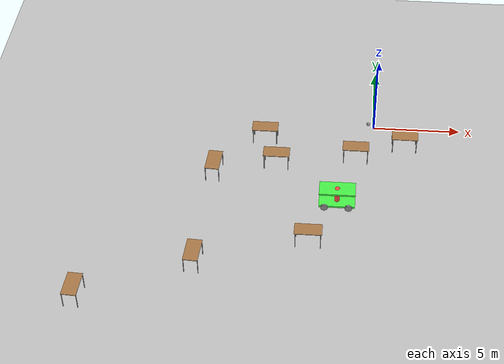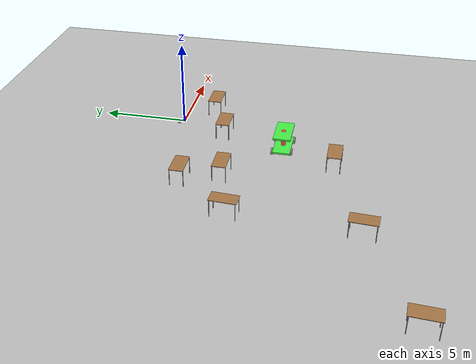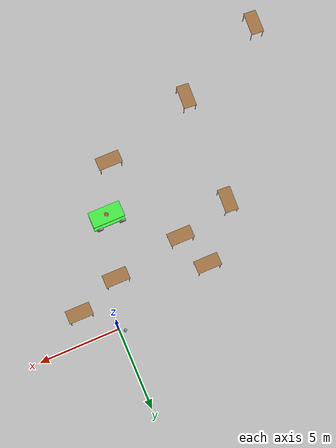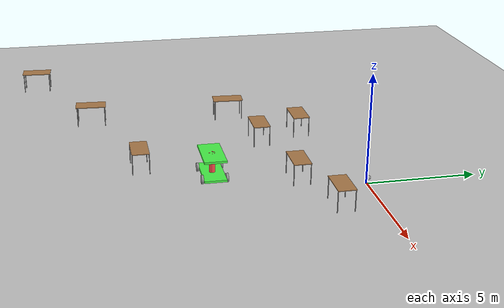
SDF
<sdf version="1.6">
 <world name="default">
  <model name="ground_plane">
   <static>1</static>
   <link name="link">
    <collision name="collision">
     <geometry><plane><normal>0 0 1</normal><size>100 100</size></plane></geometry>
     <surface>
      <contact><collide_bitmask>65535</collide_bitmask></contact>
      <friction><ode><mu>100</mu><mu2>50</mu2></ode></friction>
     </surface>
    </collision>
    <visual name="visual">
     <cast_shadows>0</cast_shadows>
     <geometry><plane><normal>0 0 1</normal><size>100 100</size></plane></geometry>
     <material>
      <script><uri>file://media/materials/scripts/gazebo.material</uri><name>Gazebo/Grey</name></script>
     </material>
    </visual>
   </link>
  </model>
  <model name="table">
   <static>1</static>
   <link name="link">
    <collision name="surface">
     <pose>0 0 1 0 -0 0</pose>
     <geometry><box><size>1.5 0.8 0.03</size></box></geometry>
     <surface><friction><ode><mu>0.6</mu><mu2>0.6</mu2></ode></friction></surface>
    </collision>
    <visual name="visual1">
     <pose>0 0 1 0 -0 0</pose>
     <geometry><box><size>1.5 0.8 0.03</size></box></geometry>
     <material>
      <script><uri>file://media/materials/scripts/gazebo.material</uri><name>Gazebo/Wood</name></script>
     </material>
    </visual>
    <collision name="front_left_leg">
     <pose>0.68 0.38 0.5 0 -0 0</pose>
     <geometry><cylinder><radius>0.02</radius><length>1</length></cylinder></geometry>
    </collision>
    <visual name="front_left_leg">
     <pose>0.68 0.38 0.5 0 -0 0</pose>
     <geometry><cylinder><radius>0.02</radius><length>1</length></cylinder></geometry>
     <material>
      <script><uri>file://media/materials/scripts/gazebo.material</uri><name>Gazebo/Grey</name></script>
     </material>
    </visual>
    <collision name="front_right_leg">
     <pose>0.68 -0.38 0.5 0 -0 0</pose>
     <geometry><cylinder><radius>0.02</radius><length>1</length></cylinder></geometry>
    </collision>
    <visual name="front_right_leg">
     <pose>0.68 -0.38 0.5 0 -0 0</pose>
     <geometry><cylinder><radius>0.02</radius><length>1</length></cylinder></geometry>
     <material>
      <script><uri>file://media/materials/scripts/gazebo.material</uri><name>Gazebo/Grey</name></script>
     </material>
    </visual>
    <collision name="back_right_leg">
     <pose>-0.68 -0.38 0.5 0 -0 0</pose>
     <geometry><cylinder><radius>0.02</radius><length>1</length></cylinder></geometry>
    </collision>
    <visual name="back_right_leg">
     <pose>-0.68 -0.38 0.5 0 -0 0</pose>
     <geometry><cylinder><radius>0.02</radius><length>1</length></cylinder></geometry>
     <material>
      <script><uri>file://media/materials/scripts/gazebo.material</uri><name>Gazebo/Grey</name></script>
     </material>
    </visual>
    <collision name="back_left_leg">
     <pose>-0.68 0.38 0.5 0 -0 0</pose>
     <geometry><cylinder><radius>0.02</radius><length>1</length></cylinder></geometry>
    </collision>
    <visual name="back_left_leg">
     <pose>-0.68 0.38 0.5 0 -0 0</pose>
     <geometry><cylinder><radius>0.02</radius><length>1</length></cylinder></geometry>
     <material>
      <script><uri>file://media/materials/scripts/gazebo.material</uri><name>Gazebo/Grey</name></script>
     </material>
    </visual>
   </link>
   <pose>-5.5188 -3.58842 0 0 -0 0</pose>
  </model>
  <model name="table_clone">
   <static>1</static>
   <link name="link">
    <collision name="surface">
     <pose>0 0 1 0 -0 0</pose>
     <geometry><box><size>1.5 0.8 0.03</size></box></geometry>
     <surface><friction><ode><mu>0.6</mu><mu2>0.6</mu2></ode></friction></surface>
    </collision>
    <visual name="visual1">
     <pose>0 0 1 0 -0 0</pose>
     <geometry><box><size>1.5 0.8 0.03</size></box></geometry>
     <material>
      <script><uri>file://media/materials/scripts/gazebo.material</uri><name>Gazebo/Wood</name></script>
     </material>
    </visual>
    <collision name="front_left_leg">
     <pose>0.68 0.38 0.5 0 -0 0</pose>
     <geometry><cylinder><radius>0.02</radius><length>1</length></cylinder></geometry>
    </collision>
    <visual name="front_left_leg">
     <pose>0.68 0.38 0.5 0 -0 0</pose>
     <geometry><cylinder><radius>0.02</radius><length>1</length></cylinder></geometry>
     <material>
      <script><uri>file://media/materials/scripts/gazebo.material</uri><name>Gazebo/Grey</name></script>
     </material>
    </visual>
    <collision name="front_right_leg">
     <pose>0.68 -0.38 0.5 0 -0 0</pose>
     <geometry><cylinder><radius>0.02</radius><length>1</length></cylinder></geometry>
    </collision>
    <visual name="front_right_leg">
     <pose>0.68 -0.38 0.5 0 -0 0</pose>
     <geometry><cylinder><radius>0.02</radius><length>1</length></cylinder></geometry>
     <material>
      <script><uri>file://media/materials/scripts/gazebo.material</uri><name>Gazebo/Grey</name></script>
     </material>
    </visual>
    <collision name="back_right_leg">
     <pose>-0.68 -0.38 0.5 0 -0 0</pose>
     <geometry><cylinder><radius>0.02</radius><length>1</length></cylinder></geometry>
    </collision>
    <visual name="back_right_leg">
     <pose>-0.68 -0.38 0.5 0 -0 0</pose>
     <geometry><cylinder><radius>0.02</radius><length>1</length></cylinder></geometry>
     <material>
      <script><uri>file://media/materials/scripts/gazebo.material</uri><name>Gazebo/Grey</name></script>
     </material>
    </visual>
    <collision name="back_left_leg">
     <pose>-0.68 0.38 0.5 0 -0 0</pose>
     <geometry><cylinder><radius>0.02</radius><length>1</length></cylinder></geometry>
    </collision>
    <visual name="back_left_leg">
     <pose>-0.68 0.38 0.5 0 -0 0</pose>
     <geometry><cylinder><radius>0.02</radius><length>1</length></cylinder></geometry>
     <material>
      <script><uri>file://media/materials/scripts/gazebo.material</uri><name>Gazebo/Grey</name></script>
     </material>
    </visual>
   </link>
   <pose>-3.37257 -9.55007 0 0 -0 0</pose>
  </model>
  <model name="table_clone_4">
   <static>1</static>
   <link name="link">
    <collision name="surface">
     <pose>0 0 1 0 -0 0</pose>
     <geometry><box><size>1.5 0.8 0.03</size></box></geometry>
     <surface><friction><ode><mu>0.6</mu><mu2>0.6</mu2></ode></friction></surface>
    </collision>
    <visual name="visual1">
     <pose>0 0 1 0 -0 0</pose>
     <geometry><box><size>1.5 0.8 0.03</size></box></geometry>
     <material>
      <script><uri>file://media/materials/scripts/gazebo.material</uri><name>Gazebo/Wood</name></script>
     </material>
    </visual>
    <collision name="front_left_leg">
     <pose>0.68 0.38 0.5 0 -0 0</pose>
     <geometry><cylinder><radius>0.02</radius><length>1</length></cylinder></geometry>
    </collision>
    <visual name="front_left_leg">
     <pose>0.68 0.38 0.5 0 -0 0</pose>
     <geometry><cylinder><radius>0.02</radius><length>1</length></cylinder></geometry>
     <material>
      <script><uri>file://media/materials/scripts/gazebo.material</uri><name>Gazebo/Grey</name></script>
     </material>
    </visual>
    <collision name="front_right_leg">
     <pose>0.68 -0.38 0.5 0 -0 0</pose>
     <geometry><cylinder><radius>0.02</radius><length>1</length></cylinder></geometry>
    </collision>
    <visual name="front_right_leg">
     <pose>0.68 -0.38 0.5 0 -0 0</pose>
     <geometry><cylinder><radius>0.02</radius><length>1</length></cylinder></geometry>
     <material>
      <script><uri>file://media/materials/scripts/gazebo.material</uri><name>Gazebo/Grey</name></script>
     </material>
    </visual>
    <collision name="back_right_leg">
     <pose>-0.68 -0.38 0.5 0 -0 0</pose>
     <geometry><cylinder><radius>0.02</radius><length>1</length></cylinder></geometry>
    </collision>
    <visual name="back_right_leg">
     <pose>-0.68 -0.38 0.5 0 -0 0</pose>
     <geometry><cylinder><radius>0.02</radius><length>1</length></cylinder></geometry>
     <material>
      <script><uri>file://media/materials/scripts/gazebo.material</uri><name>Gazebo/Grey</name></script>
     </material>
    </visual>
    <collision name="back_left_leg">
     <pose>-0.68 0.38 0.5 0 -0 0</pose>
     <geometry><cylinder><radius>0.02</radius><length>1</length></cylinder></geometry>
    </collision>
    <visual name="back_left_leg">
     <pose>-0.68 0.38 0.5 0 -0 0</pose>
     <geometry><cylinder><radius>0.02</radius><length>1</length></cylinder></geometry>
     <material>
      <script><uri>file://media/materials/scripts/gazebo.material</uri><name>Gazebo/Grey</name></script>
     </material>
    </visual>
   </link>
   <pose>-6.33417 -1.44501 0 0 -0 0</pose>
  </model>
  <model name="table_clone_5">
   <static>1</static>
   <link name="link">
    <collision name="surface">
     <pose>0 0 1 0 -0 0</pose>
     <geometry><box><size>1.5 0.8 0.03</size></box></geometry>
     <surface><friction><ode><mu>0.6</mu><mu2>0.6</mu2></ode></friction></surface>
    </collision>
    <visual name="visual1">
     <pose>0 0 1 0 -0 0</pose>
     <geometry><box><size>1.5 0.8 0.03</size></box></geometry>
     <material>
      <script><uri>file://media/materials/scripts/gazebo.material</uri><name>Gazebo/Wood</name></script>
     </material>
    </visual>
    <collision name="front_left_leg">
     <pose>0.68 0.38 0.5 0 -0 0</pose>
     <geometry><cylinder><radius>0.02</radius><length>1</length></cylinder></geometry>
    </collision>
    <visual name="front_left_leg">
     <pose>0.68 0.38 0.5 0 -0 0</pose>
     <geometry><cylinder><radius>0.02</radius><length>1</length></cylinder></geometry>
     <material>
      <script><uri>file://media/materials/scripts/gazebo.material</uri><name>Gazebo/Grey</name></script>
     </material>
    </visual>
    <collision name="front_right_leg">
     <pose>0.68 -0.38 0.5 0 -0 0</pose>
     <geometry><cylinder><radius>0.02</radius><length>1</length></cylinder></geometry>
    </collision>
    <visual name="front_right_leg">
     <pose>0.68 -0.38 0.5 0 -0 0</pose>
     <geometry><cylinder><radius>0.02</radius><length>1</length></cylinder></geometry>
     <material>
      <script><uri>file://media/materials/scripts/gazebo.material</uri><name>Gazebo/Grey</name></script>
     </material>
    </visual>
    <collision name="back_right_leg">
     <pose>-0.68 -0.38 0.5 0 -0 0</pose>
     <geometry><cylinder><radius>0.02</radius><length>1</length></cylinder></geometry>
    </collision>
    <visual name="back_right_leg">
     <pose>-0.68 -0.38 0.5 0 -0 0</pose>
     <geometry><cylinder><radius>0.02</radius><length>1</length></cylinder></geometry>
     <material>
      <script><uri>file://media/materials/scripts/gazebo.material</uri><name>Gazebo/Grey</name></script>
     </material>
    </visual>
    <collision name="back_left_leg">
     <pose>-0.68 0.38 0.5 0 -0 0</pose>
     <geometry><cylinder><radius>0.02</radius><length>1</length></cylinder></geometry>
    </collision>
    <visual name="back_left_leg">
     <pose>-0.68 0.38 0.5 0 -0 0</pose>
     <geometry><cylinder><radius>0.02</radius><length>1</length></cylinder></geometry>
     <material>
      <script><uri>file://media/materials/scripts/gazebo.material</uri><name>Gazebo/Grey</name></script>
     </material>
    </visual>
   </link>
   <pose>-1.02913 -2.78989 0 0 -0 0</pose>
  </model>
  <model name="table_clone_6">
   <static>1</static>
   <link name="link">
    <collision name="surface">
     <pose>0 0 1 0 -0 0</pose>
     <geometry><box><size>1.5 0.8 0.03</size></box></geometry>
     <surface><friction><ode><mu>0.6</mu><mu2>0.6</mu2></ode></friction></surface>
    </collision>
    <visual name="visual1">
     <pose>0 0 1 0 -0 0</pose>
     <geometry><box><size>1.5 0.8 0.03</size></box></geometry>
     <material>
      <script><uri>file://media/materials/scripts/gazebo.material</uri><name>Gazebo/Wood</name></script>
     </material>
    </visual>
    <collision name="front_left_leg">
     <pose>0.68 0.38 0.5 0 -0 0</pose>
     <geometry><cylinder><radius>0.02</radius><length>1</length></cylinder></geometry>
    </collision>
    <visual name="front_left_leg">
     <pose>0.68 0.38 0.5 0 -0 0</pose>
     <geometry><cylinder><radius>0.02</radius><length>1</length></cylinder></geometry>
     <material>
      <script><uri>file://media/materials/scripts/gazebo.material</uri><name>Gazebo/Grey</name></script>
     </material>
    </visual>
    <collision name="front_right_leg">
     <pose>0.68 -0.38 0.5 0 -0 0</pose>
     <geometry><cylinder><radius>0.02</radius><length>1</length></cylinder></geometry>
    </collision>
    <visual name="front_right_leg">
     <pose>0.68 -0.38 0.5 0 -0 0</pose>
     <geometry><cylinder><radius>0.02</radius><length>1</length></cylinder></geometry>
     <material>
      <script><uri>file://media/materials/scripts/gazebo.material</uri><name>Gazebo/Grey</name></script>
     </material>
    </visual>
    <collision name="back_right_leg">
     <pose>-0.68 -0.38 0.5 0 -0 0</pose>
     <geometry><cylinder><radius>0.02</radius><length>1</length></cylinder></geometry>
    </collision>
    <visual name="back_right_leg">
     <pose>-0.68 -0.38 0.5 0 -0 0</pose>
     <geometry><cylinder><radius>0.02</radius><length>1</length></cylinder></geometry>
     <material>
      <script><uri>file://media/materials/scripts/gazebo.material</uri><name>Gazebo/Grey</name></script>
     </material>
    </visual>
    <collision name="back_left_leg">
     <pose>-0.68 0.38 0.5 0 -0 0</pose>
     <geometry><cylinder><radius>0.02</radius><length>1</length></cylinder></geometry>
    </collision>
    <visual name="back_left_leg">
     <pose>-0.68 0.38 0.5 0 -0 0</pose>
     <geometry><cylinder><radius>0.02</radius><length>1</length></cylinder></geometry>
     <material>
      <script><uri>file://media/materials/scripts/gazebo.material</uri><name>Gazebo/Grey</name></script>
     </material>
    </visual>
   </link>
   <pose>1.75969 -1.68148 0 0 -0 0</pose>
  </model>
  <model name="table_clone_9_clone_3">
   <static>1</static>
   <link name="link">
    <collision name="surface">
     <pose>0 0 1 0 -0 0</pose>
     <geometry><box><size>1.5 0.8 0.03</size></box></geometry>
     <surface><friction><ode><mu>0.6</mu><mu2>0.6</mu2></ode></friction></surface>
    </collision>
    <visual name="visual1">
     <pose>0 0 1 0 -0 0</pose>
     <geometry><box><size>1.5 0.8 0.03</size></box></geometry>
     <material>
      <script><uri>file://media/materials/scripts/gazebo.material</uri><name>Gazebo/Wood</name></script>
     </material>
    </visual>
    <collision name="front_left_leg">
     <pose>0.68 0.38 0.5 0 -0 0</pose>
     <geometry><cylinder><radius>0.02</radius><length>1</length></cylinder></geometry>
    </collision>
    <visual name="front_left_leg">
     <pose>0.68 0.38 0.5 0 -0 0</pose>
     <geometry><cylinder><radius>0.02</radius><length>1</length></cylinder></geometry>
     <material>
      <script><uri>file://media/materials/scripts/gazebo.material</uri><name>Gazebo/Grey</name></script>
     </material>
    </visual>
    <collision name="front_right_leg">
     <pose>0.68 -0.38 0.5 0 -0 0</pose>
     <geometry><cylinder><radius>0.02</radius><length>1</length></cylinder></geometry>
    </collision>
    <visual name="front_right_leg">
     <pose>0.68 -0.38 0.5 0 -0 0</pose>
     <geometry><cylinder><radius>0.02</radius><length>1</length></cylinder></geometry>
     <material>
      <script><uri>file://media/materials/scripts/gazebo.material</uri><name>Gazebo/Grey</name></script>
     </material>
    </visual>
    <collision name="back_right_leg">
     <pose>-0.68 -0.38 0.5 0 -0 0</pose>
     <geometry><cylinder><radius>0.02</radius><length>1</length></cylinder></geometry>
    </collision>
    <visual name="back_right_leg">
     <pose>-0.68 -0.38 0.5 0 -0 0</pose>
     <geometry><cylinder><radius>0.02</radius><length>1</length></cylinder></geometry>
     <material>
      <script><uri>file://media/materials/scripts/gazebo.material</uri><name>Gazebo/Grey</name></script>
     </material>
    </visual>
    <collision name="back_left_leg">
     <pose>-0.68 0.38 0.5 0 -0 0</pose>
     <geometry><cylinder><radius>0.02</radius><length>1</length></cylinder></geometry>
    </collision>
    <visual name="back_left_leg">
     <pose>-0.68 0.38 0.5 0 -0 0</pose>
     <geometry><cylinder><radius>0.02</radius><length>1</length></cylinder></geometry>
     <material>
      <script><uri>file://media/materials/scripts/gazebo.material</uri><name>Gazebo/Grey</name></script>
     </material>
    </visual>
   </link>
   <pose>-15.1071 -14.2294 0 0 0 -1.62839</pose>
  </model>
  <model name="table_clone_9_clone_4">
   <static>1</static>
   <link name="link">
    <collision name="surface">
     <pose>0 0 1 0 -0 0</pose>
     <geometry><box><size>1.5 0.8 0.03</size></box></geometry>
     <surface><friction><ode><mu>0.6</mu><mu2>0.6</mu2></ode></friction></surface>
    </collision>
    <visual name="visual1">
     <pose>0 0 1 0 -0 0</pose>
     <geometry><box><size>1.5 0.8 0.03</size></box></geometry>
     <material>
      <script><uri>file://media/materials/scripts/gazebo.material</uri><name>Gazebo/Wood</name></script>
     </material>
    </visual>
    <collision name="front_left_leg">
     <pose>0.68 0.38 0.5 0 -0 0</pose>
     <geometry><cylinder><radius>0.02</radius><length>1</length></cylinder></geometry>
    </collision>
    <visual name="front_left_leg">
     <pose>0.68 0.38 0.5 0 -0 0</pose>
     <geometry><cylinder><radius>0.02</radius><length>1</length></cylinder></geometry>
     <material>
      <script><uri>file://media/materials/scripts/gazebo.material</uri><name>Gazebo/Grey</name></script>
     </material>
    </visual>
    <collision name="front_right_leg">
     <pose>0.68 -0.38 0.5 0 -0 0</pose>
     <geometry><cylinder><radius>0.02</radius><length>1</length></cylinder></geometry>
    </collision>
    <visual name="front_right_leg">
     <pose>0.68 -0.38 0.5 0 -0 0</pose>
     <geometry><cylinder><radius>0.02</radius><length>1</length></cylinder></geometry>
     <material>
      <script><uri>file://media/materials/scripts/gazebo.material</uri><name>Gazebo/Grey</name></script>
     </material>
    </visual>
    <collision name="back_right_leg">
     <pose>-0.68 -0.38 0.5 0 -0 0</pose>
     <geometry><cylinder><radius>0.02</radius><length>1</length></cylinder></geometry>
    </collision>
    <visual name="back_right_leg">
     <pose>-0.68 -0.38 0.5 0 -0 0</pose>
     <geometry><cylinder><radius>0.02</radius><length>1</length></cylinder></geometry>
     <material>
      <script><uri>file://media/materials/scripts/gazebo.material</uri><name>Gazebo/Grey</name></script>
     </material>
    </visual>
    <collision name="back_left_leg">
     <pose>-0.68 0.38 0.5 0 -0 0</pose>
     <geometry><cylinder><radius>0.02</radius><length>1</length></cylinder></geometry>
    </collision>
    <visual name="back_left_leg">
     <pose>-0.68 0.38 0.5 0 -0 0</pose>
     <geometry><cylinder><radius>0.02</radius><length>1</length></cylinder></geometry>
     <material>
      <script><uri>file://media/materials/scripts/gazebo.material</uri><name>Gazebo/Grey</name></script>
     </material>
    </visual>
   </link>
   <pose>-9 -4.50246 0 0 0 -1.62839</pose>
  </model>
  <model name="table_clone_9_clone_5">
   <static>1</static>
   <link name="link">
    <collision name="surface">
     <pose>0 0 1 0 -0 0</pose>
     <geometry><box><size>1.5 0.8 0.03</size></box></geometry>
     <surface><friction><ode><mu>0.6</mu><mu2>0.6</mu2></ode></friction></surface>
    </collision>
    <visual name="visual1">
     <pose>0 0 1 0 -0 0</pose>
     <geometry><box><size>1.5 0.8 0.03</size></box></geometry>
     <material>
      <script><uri>file://media/materials/scripts/gazebo.material</uri><name>Gazebo/Wood</name></script>
     </material>
    </visual>
    <collision name="front_left_leg">
     <pose>0.68 0.38 0.5 0 -0 0</pose>
     <geometry><cylinder><radius>0.02</radius><length>1</length></cylinder></geometry>
    </collision>
    <visual name="front_left_leg">
     <pose>0.68 0.38 0.5 0 -0 0</pose>
     <geometry><cylinder><radius>0.02</radius><length>1</length></cylinder></geometry>
     <material>
      <script><uri>file://media/materials/scripts/gazebo.material</uri><name>Gazebo/Grey</name></script>
     </material>
    </visual>
    <collision name="front_right_leg">
     <pose>0.68 -0.38 0.5 0 -0 0</pose>
     <geometry><cylinder><radius>0.02</radius><length>1</length></cylinder></geometry>
    </collision>
    <visual name="front_right_leg">
     <pose>0.68 -0.38 0.5 0 -0 0</pose>
     <geometry><cylinder><radius>0.02</radius><length>1</length></cylinder></geometry>
     <material>
      <script><uri>file://media/materials/scripts/gazebo.material</uri><name>Gazebo/Grey</name></script>
     </material>
    </visual>
    <collision name="back_right_leg">
     <pose>-0.68 -0.38 0.5 0 -0 0</pose>
     <geometry><cylinder><radius>0.02</radius><length>1</length></cylinder></geometry>
    </collision>
    <visual name="back_right_leg">
     <pose>-0.68 -0.38 0.5 0 -0 0</pose>
     <geometry><cylinder><radius>0.02</radius><length>1</length></cylinder></geometry>
     <material>
      <script><uri>file://media/materials/scripts/gazebo.material</uri><name>Gazebo/Grey</name></script>
     </material>
    </visual>
    <collision name="back_left_leg">
     <pose>-0.68 0.38 0.5 0 -0 0</pose>
     <geometry><cylinder><radius>0.02</radius><length>1</length></cylinder></geometry>
    </collision>
    <visual name="back_left_leg">
     <pose>-0.68 0.38 0.5 0 -0 0</pose>
     <geometry><cylinder><radius>0.02</radius><length>1</length></cylinder></geometry>
     <material>
      <script><uri>file://media/materials/scripts/gazebo.material</uri><name>Gazebo/Grey</name></script>
     </material>
    </visual>
   </link>
   <pose>-9.31291 -11.4602 0 0 0 -1.62839</pose>
  </model>
  <model name="myRobot">
   <link name="link_2">
    <inertial>
     <mass>1</mass>
     <inertia>
      <ixx>0.166667</ixx>
      <ixy>0</ixy>
      <ixz>0</ixz>
      <iyy>0.166667</iyy>
      <iyz>0</iyz>
      <izz>0.166667</izz>
     </inertia>
     <pose>0 0 0.2 0 -0 0</pose>
    </inertial>
    <pose>-0.650389 0 0 0 -0 0</pose>
    <visual name="visual">
     <geometry><box><size>2 1 0.1</size></box></geometry>
     <material>
      <lighting>1</lighting>
      <script><uri>file://media/materials/scripts/gazebo.material</uri><name>Gazebo/Grey</name></script>
      <shader type="pixel"><normal_map>__default__</normal_map></shader>
      <ambient>0.3 1 0.3 1</ambient>
      <diffuse>0.7 0.7 0.7 1</diffuse>
      <specular>0.01 0.01 0.01 1</specular>
      <emissive>0 0 0 1</emissive>
     </material>
    </visual>
    <collision name="collision">
     <geometry><box><size>2 1 0.1</size></box></geometry>
     <surface>
      <friction>
       <ode><mu>1</mu><mu2>1</mu2><fdir1>0 0 0</fdir1><slip1>0</slip1><slip2>0</slip2></ode>
       <torsional>
        <coefficient>1</coefficient>
        <patch_radius>0</patch_radius>
        <surface_radius>0</surface_radius>
        <use_patch_radius>1</use_patch_radius>
        <ode><slip>0</slip></ode>
       </torsional>
      </friction>
      <bounce><restitution_coefficient>0</restitution_coefficient><threshold>1e+06</threshold></bounce>
      <contact>
       <collide_without_contact>0</collide_without_contact>
       <collide_without_contact_bitmask>1</collide_without_contact_bitmask>
       <collide_bitmask>1</collide_bitmask>
       <ode>
        <soft_cfm>0</soft_cfm>
        <soft_erp>0.2</soft_erp>
        <kp>1e+13</kp>
        <kd>1</kd>
        <max_vel>0.01</max_vel>
        <min_depth>0</min_depth>
       </ode>
       <bullet>
        <split_impulse>1</split_impulse>
        <split_impulse_penetration_threshold>-0.01</split_impulse_penetration_threshold>
        <soft_cfm>0</soft_cfm>
        <soft_erp>0.2</soft_erp>
        <kp>1e+13</kp>
        <kd>1</kd>
       </bullet>
      </contact>
     </surface>
    </collision>
   </link>
   <link name="link_2_0">
    <inertial>
     <mass>1</mass>
     <inertia><ixx>0.145833</ixx><ixy>0</ixy><ixz>0</ixz><iyy>0.145833</iyy><iyz>0</iyz><izz>0.125</izz></inertia>
    </inertial>
    <pose>-0.650389 -0 0.45 0 -0 0</pose>
    <visual name="visual">
     <geometry><cylinder><radius>0.14</radius><length>1</length></cylinder></geometry>
     <material>
      <lighting>1</lighting>
      <script><uri>file://media/materials/scripts/gazebo.material</uri><name>Gazebo/Grey</name></script>
      <shader type="pixel"><normal_map>__default__</normal_map></shader>
      <ambient>1 0.3 0.3 1</ambient>
      <diffuse>0.7 0.7 0.7 1</diffuse>
      <specular>0.01 0.01 0.01 1</specular>
      <emissive>0 0 0 1</emissive>
     </material>
    </visual>
    <collision name="collision">
     <geometry><cylinder><radius>0.14</radius><length>1</length></cylinder></geometry>
     <surface>
      <friction>
       <ode><mu>1</mu><mu2>1</mu2><fdir1>0 0 0</fdir1><slip1>0</slip1><slip2>0</slip2></ode>
       <torsional>
        <coefficient>1</coefficient>
        <patch_radius>0</patch_radius>
        <surface_radius>0</surface_radius>
        <use_patch_radius>1</use_patch_radius>
        <ode><slip>0</slip></ode>
       </torsional>
      </friction>
      <bounce><restitution_coefficient>0</restitution_coefficient><threshold>1e+06</threshold></bounce>
      <contact>
       <collide_without_contact>0</collide_without_contact>
       <collide_without_contact_bitmask>1</collide_without_contact_bitmask>
       <collide_bitmask>1</collide_bitmask>
       <ode>
        <soft_cfm>0</soft_cfm>
        <soft_erp>0.2</soft_erp>
        <kp>1e+13</kp>
        <kd>1</kd>
        <max_vel>0.01</max_vel>
        <min_depth>0</min_depth>
       </ode>
       <bullet>
        <split_impulse>1</split_impulse>
        <split_impulse_penetration_threshold>-0.01</split_impulse_penetration_threshold>
        <soft_cfm>0</soft_cfm>
        <soft_erp>0.2</soft_erp>
        <kp>1e+13</kp>
        <kd>1</kd>
       </bullet>
      </contact>
     </surface>
    </collision>
   </link>
   <link name="link_2_clone">
    <inertial>
     <mass>1</mass>
     <inertia>
      <ixx>0.166667</ixx>
      <ixy>0</ixy>
      <ixz>0</ixz>
      <iyy>0.166667</iyy>
      <iyz>0</iyz>
      <izz>0.166667</izz>
     </inertia>
     <pose>0 0 0.2 0 -0 0</pose>
    </inertial>
    <pose>-0.650389 0 0.9 0 -0 0</pose>
    <visual name="visual">
     <geometry><box><size>2 1 0.1</size></box></geometry>
     <material>
      <lighting>1</lighting>
      <script><uri>file://media/materials/scripts/gazebo.material</uri><name>Gazebo/Grey</name></script>
      <shader type="pixel"><normal_map>__default__</normal_map></shader>
      <ambient>0.3 1 0.3 1</ambient>
      <diffuse>0.7 0.7 0.7 1</diffuse>
      <specular>0.01 0.01 0.01 1</specular>
      <emissive>0 0 0 1</emissive>
     </material>
    </visual>
    <collision name="collision">
     <geometry><box><size>2 1 0.1</size></box></geometry>
     <surface>
      <friction>
       <ode><mu>1</mu><mu2>1</mu2><fdir1>0 0 0</fdir1><slip1>0</slip1><slip2>0</slip2></ode>
       <torsional>
        <coefficient>1</coefficient>
        <patch_radius>0</patch_radius>
        <surface_radius>0</surface_radius>
        <use_patch_radius>1</use_patch_radius>
        <ode><slip>0</slip></ode>
       </torsional>
      </friction>
      <bounce><restitution_coefficient>0</restitution_coefficient><threshold>1e+06</threshold></bounce>
      <contact>
       <collide_without_contact>0</collide_without_contact>
       <collide_without_contact_bitmask>1</collide_without_contact_bitmask>
       <collide_bitmask>1</collide_bitmask>
       <ode>
        <soft_cfm>0</soft_cfm>
        <soft_erp>0.2</soft_erp>
        <kp>1e+13</kp>
        <kd>1</kd>
        <max_vel>0.01</max_vel>
        <min_depth>0</min_depth>
       </ode>
       <bullet>
        <split_impulse>1</split_impulse>
        <split_impulse_penetration_threshold>-0.01</split_impulse_penetration_threshold>
        <soft_cfm>0</soft_cfm>
        <soft_erp>0.2</soft_erp>
        <kp>1e+13</kp>
        <kd>1</kd>
       </bullet>
      </contact>
     </surface>
    </collision>
   </link>
   <link name="link_3">
    <inertial>
     <mass>1</mass>
     <inertia><ixx>0.145833</ixx><ixy>0</ixy><ixz>0</ixz><iyy>0.145833</iyy><iyz>0</iyz><izz>0.125</izz></inertia>
    </inertial>
    <pose>0 -0.550019 -0 1.5707 -0 0</pose>
    <visual name="visual">
     <geometry><cylinder><radius>0.2</radius><length>0.1</length></cylinder></geometry>
     <material>
      <lighting>1</lighting>
      <script><uri>file://media/materials/scripts/gazebo.material</uri><name>Gazebo/Grey</name></script>
      <shader type="pixel"><normal_map>__default__</normal_map></shader>
      <ambient>0.3 0.3 0.3 1</ambient>
      <diffuse>0.7 0.7 0.7 1</diffuse>
      <specular>0.01 0.01 0.01 1</specular>
      <emissive>0 0 0 1</emissive>
     </material>
    </visual>
    <collision name="collision">
     <geometry><cylinder><radius>0.2</radius><length>0.1</length></cylinder></geometry>
     <surface>
      <friction>
       <ode><mu>1</mu><mu2>1</mu2><fdir1>0 0 0</fdir1><slip1>0</slip1><slip2>0</slip2></ode>
       <torsional>
        <coefficient>1</coefficient>
        <patch_radius>0</patch_radius>
        <surface_radius>0</surface_radius>
        <use_patch_radius>1</use_patch_radius>
        <ode><slip>0</slip></ode>
       </torsional>
      </friction>
      <bounce><restitution_coefficient>0</restitution_coefficient><threshold>1e+06</threshold></bounce>
      <contact>
       <collide_without_contact>0</collide_without_contact>
       <collide_without_contact_bitmask>1</collide_without_contact_bitmask>
       <collide_bitmask>1</collide_bitmask>
       <ode>
        <soft_cfm>0</soft_cfm>
        <soft_erp>0.2</soft_erp>
        <kp>1e+13</kp>
        <kd>1</kd>
        <max_vel>0.01</max_vel>
        <min_depth>0</min_depth>
       </ode>
       <bullet>
        <split_impulse>1</split_impulse>
        <split_impulse_penetration_threshold>-0.01</split_impulse_penetration_threshold>
        <soft_cfm>0</soft_cfm>
        <soft_erp>0.2</soft_erp>
        <kp>1e+13</kp>
        <kd>1</kd>
       </bullet>
      </contact>
     </surface>
    </collision>
   </link>
   <link name="link_3_clone">
    <inertial>
     <mass>1</mass>
     <inertia><ixx>0.145833</ixx><ixy>0</ixy><ixz>0</ixz><iyy>0.145833</iyy><iyz>0</iyz><izz>0.125</izz></inertia>
    </inertial>
    <pose>-0 0.550019 0 1.5707 -0 0</pose>
    <visual name="visual">
     <geometry><cylinder><radius>0.2</radius><length>0.1</length></cylinder></geometry>
     <material>
      <lighting>1</lighting>
      <script><uri>file://media/materials/scripts/gazebo.material</uri><name>Gazebo/Grey</name></script>
      <shader type="pixel"><normal_map>__default__</normal_map></shader>
      <ambient>0.3 0.3 0.3 1</ambient>
      <diffuse>0.7 0.7 0.7 1</diffuse>
      <specular>0.01 0.01 0.01 1</specular>
      <emissive>0 0 0 1</emissive>
     </material>
    </visual>
    <collision name="collision">
     <geometry><cylinder><radius>0.2</radius><length>0.1</length></cylinder></geometry>
     <surface>
      <friction>
       <ode><mu>1</mu><mu2>1</mu2><fdir1>0 0 0</fdir1><slip1>0</slip1><slip2>0</slip2></ode>
       <torsional>
        <coefficient>1</coefficient>
        <patch_radius>0</patch_radius>
        <surface_radius>0</surface_radius>
        <use_patch_radius>1</use_patch_radius>
        <ode><slip>0</slip></ode>
       </torsional>
      </friction>
      <bounce><restitution_coefficient>0</restitution_coefficient><threshold>1e+06</threshold></bounce>
      <contact>
       <collide_without_contact>0</collide_without_contact>
       <collide_without_contact_bitmask>1</collide_without_contact_bitmask>
       <collide_bitmask>1</collide_bitmask>
       <ode>
        <soft_cfm>0</soft_cfm>
        <soft_erp>0.2</soft_erp>
        <kp>1e+13</kp>
        <kd>1</kd>
        <max_vel>0.01</max_vel>
        <min_depth>0</min_depth>
       </ode>
       <bullet>
        <split_impulse>1</split_impulse>
        <split_impulse_penetration_threshold>-0.01</split_impulse_penetration_threshold>
        <soft_cfm>0</soft_cfm>
        <soft_erp>0.2</soft_erp>
        <kp>1e+13</kp>
        <kd>1</kd>
       </bullet>
      </contact>
     </surface>
    </collision>
   </link>
   <link name="link_3_clone_0">
    <inertial>
     <mass>1</mass>
     <inertia><ixx>0.145833</ixx><ixy>0</ixy><ixz>0</ixz><iyy>0.145833</iyy><iyz>0</iyz><izz>0.125</izz></inertia>
    </inertial>
    <pose>-1.33712 -0.550019 -0 1.5707 -0 0</pose>
    <visual name="visual">
     <geometry><cylinder><radius>0.2</radius><length>0.1</length></cylinder></geometry>
     <material>
      <lighting>1</lighting>
      <script><uri>file://media/materials/scripts/gazebo.material</uri><name>Gazebo/Grey</name></script>
      <shader type="pixel"><normal_map>__default__</normal_map></shader>
      <ambient>0 0 0 1</ambient>
      <diffuse>0.7 0.7 0.7 1</diffuse>
      <specular>0.01 0.01 0.01 1</specular>
      <emissive>0 0 0 1</emissive>
     </material>
    </visual>
    <collision name="collision">
     <geometry><cylinder><radius>0.2</radius><length>0.1</length></cylinder></geometry>
     <surface>
      <friction>
       <ode><mu>1</mu><mu2>1</mu2><fdir1>0 0 0</fdir1><slip1>0</slip1><slip2>0</slip2></ode>
       <torsional>
        <coefficient>1</coefficient>
        <patch_radius>0</patch_radius>
        <surface_radius>0</surface_radius>
        <use_patch_radius>1</use_patch_radius>
        <ode><slip>0</slip></ode>
       </torsional>
      </friction>
      <bounce><restitution_coefficient>0</restitution_coefficient><threshold>1e+06</threshold></bounce>
      <contact>
       <collide_without_contact>0</collide_without_contact>
       <collide_without_contact_bitmask>1</collide_without_contact_bitmask>
       <collide_bitmask>1</collide_bitmask>
       <ode>
        <soft_cfm>0</soft_cfm>
        <soft_erp>0.2</soft_erp>
        <kp>1e+13</kp>
        <kd>1</kd>
        <max_vel>0.01</max_vel>
        <min_depth>0</min_depth>
       </ode>
       <bullet>
        <split_impulse>1</split_impulse>
        <split_impulse_penetration_threshold>-0.01</split_impulse_penetration_threshold>
        <soft_cfm>0</soft_cfm>
        <soft_erp>0.2</soft_erp>
        <kp>1e+13</kp>
        <kd>1</kd>
       </bullet>
      </contact>
     </surface>
    </collision>
   </link>
   <link name="link_3_clone_1">
    <inertial>
     <mass>1</mass>
     <inertia><ixx>0.145833</ixx><ixy>0</ixy><ixz>0</ixz><iyy>0.145833</iyy><iyz>0</iyz><izz>0.125</izz></inertia>
    </inertial>
    <pose>-1.45039 0.550019 0 1.5707 -0 0</pose>
    <visual name="visual">
     <geometry><cylinder><radius>0.2</radius><length>0.1</length></cylinder></geometry>
     <material>
      <lighting>1</lighting>
      <script><uri>file://media/materials/scripts/gazebo.material</uri><name>Gazebo/Grey</name></script>
      <shader type="pixel"><normal_map>__default__</normal_map></shader>
      <ambient>0.3 0.3 0.3 1</ambient>
      <diffuse>0.7 0.7 0.7 1</diffuse>
      <specular>0.01 0.01 0.01 1</specular>
      <emissive>0 0 0 1</emissive>
     </material>
    </visual>
    <collision name="collision">
     <geometry><cylinder><radius>0.2</radius><length>0.1</length></cylinder></geometry>
     <surface>
      <friction>
       <ode><mu>1</mu><mu2>1</mu2><fdir1>0 0 0</fdir1><slip1>0</slip1><slip2>0</slip2></ode>
       <torsional>
        <coefficient>1</coefficient>
        <patch_radius>0</patch_radius>
        <surface_radius>0</surface_radius>
        <use_patch_radius>1</use_patch_radius>
        <ode><slip>0</slip></ode>
       </torsional>
      </friction>
      <bounce><restitution_coefficient>0</restitution_coefficient><threshold>1e+06</threshold></bounce>
      <contact>
       <collide_without_contact>0</collide_without_contact>
       <collide_without_contact_bitmask>1</collide_without_contact_bitmask>
       <collide_bitmask>1</collide_bitmask>
       <ode>
        <soft_cfm>0</soft_cfm>
        <soft_erp>0.2</soft_erp>
        <kp>1e+13</kp>
        <kd>1</kd>
        <max_vel>0.01</max_vel>
        <min_depth>0</min_depth>
       </ode>
       <bullet>
        <split_impulse>1</split_impulse>
        <split_impulse_penetration_threshold>-0.01</split_impulse_penetration_threshold>
        <soft_cfm>0</soft_cfm>
        <soft_erp>0.2</soft_erp>
        <kp>1e+13</kp>
        <kd>1</kd>
       </bullet>
      </contact>
     </surface>
    </collision>
   </link>
   <joint name="link_2_0_JOINT_3" type="fixed">
    <parent>link_2_0</parent>
    <child>link_2_clone</child>
    <physics>
     <ode><limit><cfm>0</cfm><erp>0.2</erp></limit><suspension><cfm>0</cfm><erp>0.2</erp></suspension></ode>
    </physics>
   </joint>
   <joint name="link_2_JOINT_0" type="revolute">
    <parent>link_2</parent>
    <child>link_3_clone_0</child>
    <axis>
     <xyz>1 0 0</xyz>
     <use_parent_model_frame>0</use_parent_model_frame>
     <limit>
      <lower>-1.79769e+308</lower>
      <upper>1.79769e+308</upper>
      <effort>-1</effort>
      <velocity>-1</velocity>
     </limit>
     <dynamics>
      <spring_reference>0</spring_reference>
      <spring_stiffness>0</spring_stiffness>
      <damping>0</damping>
      <friction>0</friction>
     </dynamics>
    </axis>
    <physics>
     <ode><limit><cfm>0</cfm><erp>0.2</erp></limit><suspension><cfm>0</cfm><erp>0.2</erp></suspension></ode>
    </physics>
   </joint>
   <joint name="link_2_JOINT_1" type="revolute">
    <parent>link_2</parent>
    <child>link_3_clone_1</child>
    <axis>
     <xyz>1 0 0</xyz>
     <use_parent_model_frame>0</use_parent_model_frame>
     <limit>
      <lower>-1.79769e+308</lower>
      <upper>1.79769e+308</upper>
      <effort>-1</effort>
      <velocity>-1</velocity>
     </limit>
     <dynamics>
      <spring_reference>0</spring_reference>
      <spring_stiffness>0</spring_stiffness>
      <damping>0</damping>
      <friction>0</friction>
     </dynamics>
    </axis>
    <physics>
     <ode><limit><cfm>0</cfm><erp>0.2</erp></limit><suspension><cfm>0</cfm><erp>0.2</erp></suspension></ode>
    </physics>
   </joint>
   <joint name="link_2_JOINT_2" type="revolute">
    <parent>link_2</parent>
    <child>link_3</child>
    <axis>
     <xyz>0 0 1</xyz>
     <use_parent_model_frame>0</use_parent_model_frame>
     <limit>
      <lower>-1.79769e+308</lower>
      <upper>1.79769e+308</upper>
      <effort>-1</effort>
      <velocity>-1</velocity>
     </limit>
     <dynamics>
      <spring_reference>0</spring_reference>
      <spring_stiffness>0</spring_stiffness>
      <damping>0</damping>
      <friction>0</friction>
     </dynamics>
    </axis>
    <physics>
     <ode><limit><cfm>0</cfm><erp>0.2</erp></limit><suspension><cfm>0</cfm><erp>0.2</erp></suspension></ode>
    </physics>
   </joint>
   <joint name="link_2_JOINT_3" type="revolute">
    <parent>link_2</parent>
    <child>link_3_clone</child>
    <axis>
     <xyz>0 0 1</xyz>
     <use_parent_model_frame>0</use_parent_model_frame>
     <limit>
      <lower>-1.79769e+308</lower>
      <upper>1.79769e+308</upper>
      <effort>-1</effort>
      <velocity>-1</velocity>
     </limit>
     <dynamics>
      <spring_reference>0</spring_reference>
      <spring_stiffness>0</spring_stiffness>
      <damping>0</damping>
      <friction>0</friction>
     </dynamics>
    </axis>
    <physics>
     <ode><limit><cfm>0</cfm><erp>0.2</erp></limit><suspension><cfm>0</cfm><erp>0.2</erp></suspension></ode>
    </physics>
   </joint>
   <static>0</static>
   <pose>-1.29602 -6.47926 0.200005 0 -4e-06 0.002635</pose>
  </model>
  <model name="my_ball">
   <link name="link">
    <inertial>
     <mass>1</mass>
     <inertia><ixx>0.1</ixx><ixy>0</ixy><ixz>0</ixz><iyy>0.1</iyy><iyz>0</iyz><izz>0.1</izz></inertia>
    </inertial>
    <visual name="visual">
     <geometry><sphere><radius>0.1</radius></sphere></geometry>
     <material>
      <script><name>Gazebo/Grey</name><uri>file://media/materials/scripts/gazebo.material</uri></script>
      <shader type="pixel"><normal_map>__default__</normal_map></shader>
      <ambient>1 1 1 1</ambient>
      <diffuse>1 1 1 1</diffuse>
      <specular>1 1 1 1</specular>
      <emissive>1 1 1 1</emissive>
     </material>
    </visual>
    <collision name="collision">
     <geometry><sphere><radius>0.1</radius></sphere></geometry>
     <surface>
      <friction>
       <ode><mu>1</mu><mu2>1</mu2><fdir1>0 0 0</fdir1><slip1>0</slip1><slip2>0</slip2></ode>
       <torsional>
        <coefficient>1</coefficient>
        <patch_radius>0</patch_radius>
        <surface_radius>0</surface_radius>
        <use_patch_radius>1</use_patch_radius>
        <ode><slip>0</slip></ode>
       </torsional>
      </friction>
      <bounce><restitution_coefficient>0</restitution_coefficient><threshold>1e+06</threshold></bounce>
      <contact>
       <collide_without_contact>0</collide_without_contact>
       <collide_without_contact_bitmask>1</collide_without_contact_bitmask>
       <collide_bitmask>1</collide_bitmask>
       <ode>
        <soft_cfm>0</soft_cfm>
        <soft_erp>0.2</soft_erp>
        <kp>1e+13</kp>
        <kd>1</kd>
        <max_vel>0.01</max_vel>
        <min_depth>0</min_depth>
       </ode>
       <bullet>
        <split_impulse>1</split_impulse>
        <split_impulse_penetration_threshold>-0.01</split_impulse_penetration_threshold>
        <soft_cfm>0</soft_cfm>
        <soft_erp>0.2</soft_erp>
        <kp>1e+13</kp>
        <kd>1</kd>
       </bullet>
      </contact>
     </surface>
    </collision>
   </link>
   <static>0</static>
   <pose>-0.347713 0.216068 0.1 0 -0 0</pose>
  </model>
 </world>
</sdf>
